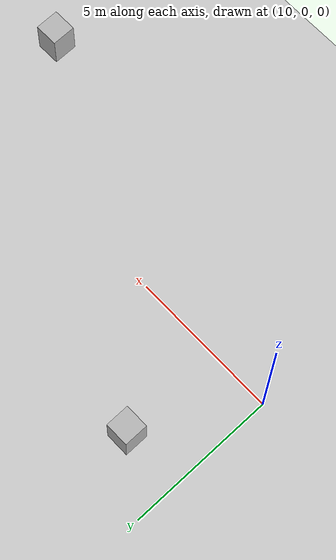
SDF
<?xml version="1.0"?>
<sdf version="1.6">
  <world name="v2-04g-r6-i1-compile-support-cruise-s5144">
    <gravity>0 0 -9.81</gravity>
    <physics name="v2_deterministic" type="ode">
      <max_step_size>0.002</max_step_size>
      <real_time_update_rate>500</real_time_update_rate>
    </physics>
    <include>
      <uri>model://sun</uri>
    </include>
    <include>
      <uri>model://ground_plane</uri>
    </include>
    <model name="cruise-left">
      <static>true</static>
      <pose>12.022174467 3.546045086 0.600000000 0 0 0.001024882</pose>
      <link name="link">
        <collision name="collision">
          <geometry>
            <box>
              <size>0.800000 0.800000 1.200000</size>
            </box>
          </geometry>
        </collision>
        <visual name="visual">
          <geometry>
            <box>
              <size>0.800000 0.800000 1.200000</size>
            </box>
          </geometry>
        </visual>
      </link>
    </model>
    <model name="cruise-right">
      <static>true</static>
      <pose>22.944166314 -3.533065605 0.600000000 0 0 0.006925653</pose>
      <link name="link">
        <collision name="collision">
          <geometry>
            <box>
              <size>0.800000 0.800000 1.200000</size>
            </box>
          </geometry>
        </collision>
        <visual name="visual">
          <geometry>
            <box>
              <size>0.800000 0.800000 1.200000</size>
            </box>
          </geometry>
        </visual>
      </link>
    </model>
  </world>
</sdf>
